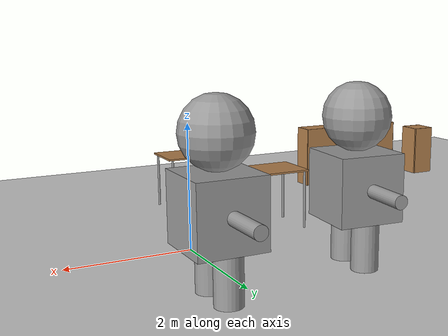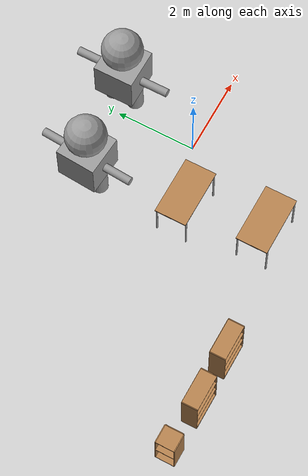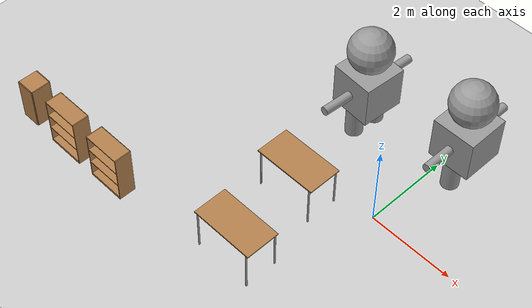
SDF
<sdf version="1.6">
 <world name="default">
  <model name="ground_plane">
   <static>1</static>
   <link name="link">
    <collision name="collision">
     <geometry><plane><normal>0 0 1</normal><size>100 100</size></plane></geometry>
     <surface>
      <contact><collide_bitmask>65535</collide_bitmask></contact>
      <friction><ode><mu>100</mu><mu2>50</mu2></ode></friction>
     </surface>
    </collision>
    <visual name="visual">
     <cast_shadows>0</cast_shadows>
     <geometry><plane><normal>0 0 1</normal><size>100 100</size></plane></geometry>
     <material>
      <script><uri>file://media/materials/scripts/gazebo.material</uri><name>Gazebo/Grey</name></script>
     </material>
    </visual>
   </link>
  </model>
  <model name="table">
   <static>1</static>
   <link name="link">
    <collision name="surface">
     <pose>0 0 1 0 -0 0</pose>
     <geometry><box><size>1.5 0.8 0.03</size></box></geometry>
     <surface><friction><ode><mu>0.6</mu><mu2>0.6</mu2></ode></friction></surface>
    </collision>
    <visual name="visual1">
     <pose>0 0 1 0 -0 0</pose>
     <geometry><box><size>1.5 0.8 0.03</size></box></geometry>
     <material>
      <script><uri>file://media/materials/scripts/gazebo.material</uri><name>Gazebo/Wood</name></script>
     </material>
    </visual>
    <collision name="front_left_leg">
     <pose>0.68 0.38 0.5 0 -0 0</pose>
     <geometry><cylinder><radius>0.02</radius><length>1</length></cylinder></geometry>
    </collision>
    <visual name="front_left_leg">
     <pose>0.68 0.38 0.5 0 -0 0</pose>
     <geometry><cylinder><radius>0.02</radius><length>1</length></cylinder></geometry>
     <material>
      <script><uri>file://media/materials/scripts/gazebo.material</uri><name>Gazebo/Grey</name></script>
     </material>
    </visual>
    <collision name="front_right_leg">
     <pose>0.68 -0.38 0.5 0 -0 0</pose>
     <geometry><cylinder><radius>0.02</radius><length>1</length></cylinder></geometry>
    </collision>
    <visual name="front_right_leg">
     <pose>0.68 -0.38 0.5 0 -0 0</pose>
     <geometry><cylinder><radius>0.02</radius><length>1</length></cylinder></geometry>
     <material>
      <script><uri>file://media/materials/scripts/gazebo.material</uri><name>Gazebo/Grey</name></script>
     </material>
    </visual>
    <collision name="back_right_leg">
     <pose>-0.68 -0.38 0.5 0 -0 0</pose>
     <geometry><cylinder><radius>0.02</radius><length>1</length></cylinder></geometry>
    </collision>
    <visual name="back_right_leg">
     <pose>-0.68 -0.38 0.5 0 -0 0</pose>
     <geometry><cylinder><radius>0.02</radius><length>1</length></cylinder></geometry>
     <material>
      <script><uri>file://media/materials/scripts/gazebo.material</uri><name>Gazebo/Grey</name></script>
     </material>
    </visual>
    <collision name="back_left_leg">
     <pose>-0.68 0.38 0.5 0 -0 0</pose>
     <geometry><cylinder><radius>0.02</radius><length>1</length></cylinder></geometry>
    </collision>
    <visual name="back_left_leg">
     <pose>-0.68 0.38 0.5 0 -0 0</pose>
     <geometry><cylinder><radius>0.02</radius><length>1</length></cylinder></geometry>
     <material>
      <script><uri>file://media/materials/scripts/gazebo.material</uri><name>Gazebo/Grey</name></script>
     </material>
    </visual>
   </link>
   <pose>-1.26954 -2.58897 0 0 -0 0</pose>
  </model>
  <model name="bookshelf">
   <static>1</static>
   <link name="link">
    <inertial><mass>1</mass></inertial>
    <collision name="back">
     <pose>0 0.005 0.6 0 -0 0</pose>
     <geometry><box><size>0.9 0.01 1.2</size></box></geometry>
    </collision>
    <visual name="visual1">
     <pose>0 0.005 0.6 0 -0 0</pose>
     <geometry><box><size>0.9 0.01 1.2</size></box></geometry>
     <material>
      <script><uri>file://media/materials/scripts/gazebo.material</uri><name>Gazebo/Wood</name></script>
     </material>
    </visual>
    <collision name="left_side">
     <pose>0.45 -0.195 0.6 0 -0 0</pose>
     <geometry><box><size>0.02 0.4 1.2</size></box></geometry>
    </collision>
    <visual name="visual2">
     <pose>0.45 -0.195 0.6 0 -0 0</pose>
     <geometry><box><size>0.02 0.4 1.2</size></box></geometry>
     <material>
      <script><uri>file://media/materials/scripts/gazebo.material</uri><name>Gazebo/Wood</name></script>
     </material>
    </visual>
    <collision name="right_side">
     <pose>-0.45 -0.195 0.6 0 -0 0</pose>
     <geometry><box><size>0.02 0.4 1.2</size></box></geometry>
    </collision>
    <visual name="visual3">
     <pose>-0.45 -0.195 0.6 0 -0 0</pose>
     <geometry><box><size>0.02 0.4 1.2</size></box></geometry>
     <material>
      <script><uri>file://media/materials/scripts/gazebo.material</uri><name>Gazebo/Wood</name></script>
     </material>
    </visual>
    <collision name="bottom">
     <pose>0 -0.195 0.03 0 -0 0</pose>
     <geometry><box><size>0.88 0.4 0.06</size></box></geometry>
    </collision>
    <visual name="visual4">
     <pose>0 -0.195 0.03 0 -0 0</pose>
     <geometry><box><size>0.88 0.4 0.06</size></box></geometry>
     <material>
      <script><uri>file://media/materials/scripts/gazebo.material</uri><name>Gazebo/Wood</name></script>
     </material>
    </visual>
    <collision name="top">
     <pose>0 -0.195 1.19 0 -0 0</pose>
     <geometry><box><size>0.88 0.4 0.02</size></box></geometry>
    </collision>
    <visual name="visual5">
     <pose>0 -0.195 1.19 0 -0 0</pose>
     <geometry><box><size>0.88 0.4 0.02</size></box></geometry>
     <material>
      <script><uri>file://media/materials/scripts/gazebo.material</uri><name>Gazebo/Wood</name></script>
     </material>
    </visual>
    <collision name="low_shelf">
     <pose>0 -0.195 0.43 0 -0 0</pose>
     <geometry><box><size>0.88 0.4 0.02</size></box></geometry>
    </collision>
    <visual name="visual6">
     <pose>0 -0.195 0.43 0 -0 0</pose>
     <geometry><box><size>0.88 0.4 0.02</size></box></geometry>
     <material>
      <script><uri>file://media/materials/scripts/gazebo.material</uri><name>Gazebo/Wood</name></script>
     </material>
    </visual>
    <collision name="high_shelf">
     <pose>0 -0.195 0.8 0 -0 0</pose>
     <geometry><box><size>0.88 0.4 0.02</size></box></geometry>
    </collision>
    <visual name="visual7">
     <pose>0 -0.195 0.8 0 -0 0</pose>
     <geometry><box><size>0.88 0.4 0.02</size></box></geometry>
     <material>
      <script><uri>file://media/materials/scripts/gazebo.material</uri><name>Gazebo/Wood</name></script>
     </material>
    </visual>
   </link>
   <pose>-4.36832 -3.00045 0 0 -0 0</pose>
  </model>
  <model name="bookshelf_0">
   <static>1</static>
   <link name="link">
    <inertial><mass>1</mass></inertial>
    <collision name="back">
     <pose>0 0.005 0.6 0 -0 0</pose>
     <geometry><box><size>0.9 0.01 1.2</size></box></geometry>
    </collision>
    <visual name="visual1">
     <pose>0 0.005 0.6 0 -0 0</pose>
     <geometry><box><size>0.9 0.01 1.2</size></box></geometry>
     <material>
      <script><uri>file://media/materials/scripts/gazebo.material</uri><name>Gazebo/Wood</name></script>
     </material>
    </visual>
    <collision name="left_side">
     <pose>0.45 -0.195 0.6 0 -0 0</pose>
     <geometry><box><size>0.02 0.4 1.2</size></box></geometry>
    </collision>
    <visual name="visual2">
     <pose>0.45 -0.195 0.6 0 -0 0</pose>
     <geometry><box><size>0.02 0.4 1.2</size></box></geometry>
     <material>
      <script><uri>file://media/materials/scripts/gazebo.material</uri><name>Gazebo/Wood</name></script>
     </material>
    </visual>
    <collision name="right_side">
     <pose>-0.45 -0.195 0.6 0 -0 0</pose>
     <geometry><box><size>0.02 0.4 1.2</size></box></geometry>
    </collision>
    <visual name="visual3">
     <pose>-0.45 -0.195 0.6 0 -0 0</pose>
     <geometry><box><size>0.02 0.4 1.2</size></box></geometry>
     <material>
      <script><uri>file://media/materials/scripts/gazebo.material</uri><name>Gazebo/Wood</name></script>
     </material>
    </visual>
    <collision name="bottom">
     <pose>0 -0.195 0.03 0 -0 0</pose>
     <geometry><box><size>0.88 0.4 0.06</size></box></geometry>
    </collision>
    <visual name="visual4">
     <pose>0 -0.195 0.03 0 -0 0</pose>
     <geometry><box><size>0.88 0.4 0.06</size></box></geometry>
     <material>
      <script><uri>file://media/materials/scripts/gazebo.material</uri><name>Gazebo/Wood</name></script>
     </material>
    </visual>
    <collision name="top">
     <pose>0 -0.195 1.19 0 -0 0</pose>
     <geometry><box><size>0.88 0.4 0.02</size></box></geometry>
    </collision>
    <visual name="visual5">
     <pose>0 -0.195 1.19 0 -0 0</pose>
     <geometry><box><size>0.88 0.4 0.02</size></box></geometry>
     <material>
      <script><uri>file://media/materials/scripts/gazebo.material</uri><name>Gazebo/Wood</name></script>
     </material>
    </visual>
    <collision name="low_shelf">
     <pose>0 -0.195 0.43 0 -0 0</pose>
     <geometry><box><size>0.88 0.4 0.02</size></box></geometry>
    </collision>
    <visual name="visual6">
     <pose>0 -0.195 0.43 0 -0 0</pose>
     <geometry><box><size>0.88 0.4 0.02</size></box></geometry>
     <material>
      <script><uri>file://media/materials/scripts/gazebo.material</uri><name>Gazebo/Wood</name></script>
     </material>
    </visual>
    <collision name="high_shelf">
     <pose>0 -0.195 0.8 0 -0 0</pose>
     <geometry><box><size>0.88 0.4 0.02</size></box></geometry>
    </collision>
    <visual name="visual7">
     <pose>0 -0.195 0.8 0 -0 0</pose>
     <geometry><box><size>0.88 0.4 0.02</size></box></geometry>
     <material>
      <script><uri>file://media/materials/scripts/gazebo.material</uri><name>Gazebo/Wood</name></script>
     </material>
    </visual>
   </link>
   <pose>-5.69401 -3.01791 0 0 -0 0</pose>
  </model>
  <model name="cabinet">
   <static>1</static>
   <link name="cabinet_bottom_plate">
    <inertial>
     <pose>0 0 -1 0 -0 0</pose>
     <inertia><ixx>2.05</ixx><ixy>0</ixy><ixz>0</ixz><iyy>2.05</iyy><iyz>0</iyz><izz>2.05</izz></inertia>
     <mass>25</mass>
    </inertial>
    <collision name="cabinet_bottom_plate_geom">
     <pose>0 0 0.01 0 -0 0</pose>
     <geometry><box><size>0.45 0.45 0.02</size></box></geometry>
    </collision>
    <visual name="cabinet_bottom_plate_geom_visual">
     <pose>0 0 0.01 0 -0 0</pose>
     <geometry><box><size>0.45 0.45 0.02</size></box></geometry>
     <material>
      <script><uri>file://media/materials/scripts/gazebo.material</uri><name>Gazebo/Wood</name></script>
     </material>
    </visual>
    <collision name="cabinet_bottom_plate_geom_cabinet_back_plate">
     <pose>0.235 0 0.51 0 -0 0</pose>
     <geometry><box><size>0.02 0.45 1.02</size></box></geometry>
    </collision>
    <visual name="cabinet_bottom_plate_geom_cabinet_back_plate_visual">
     <pose>0.235 0 0.51 0 -0 0</pose>
     <geometry><box><size>0.02 0.45 1.02</size></box></geometry>
     <material>
      <script><uri>file://media/materials/scripts/gazebo.material</uri><name>Gazebo/Wood</name></script>
     </material>
    </visual>
    <collision name="cabinet_bottom_plate_geom_cabinet_left_plate">
     <pose>0 0.235 0.51 0 -0 0</pose>
     <geometry><box><size>0.45 0.02 1.02</size></box></geometry>
    </collision>
    <visual name="cabinet_bottom_plate_geom_cabinet_left_plate_visual">
     <pose>0 0.235 0.51 0 -0 0</pose>
     <geometry><box><size>0.45 0.02 1.02</size></box></geometry>
     <material>
      <script><uri>file://media/materials/scripts/gazebo.material</uri><name>Gazebo/Wood</name></script>
     </material>
    </visual>
    <collision name="cabinet_bottom_plate_geom_cabinet_middle_plate">
     <pose>0 0 0.51 0 -0 0</pose>
     <geometry><box><size>0.45 0.45 0.02</size></box></geometry>
    </collision>
    <visual name="cabinet_bottom_plate_geom_cabinet_middle_plate_visual">
     <pose>0 0 0.51 0 -0 0</pose>
     <geometry><box><size>0.45 0.45 0.02</size></box></geometry>
     <material>
      <script><uri>file://media/materials/scripts/gazebo.material</uri><name>Gazebo/Wood</name></script>
     </material>
    </visual>
    <collision name="cabinet_bottom_plate_geom_cabinet_right_plate">
     <pose>0 -0.235 0.51 0 -0 0</pose>
     <geometry><box><size>0.45 0.02 1.02</size></box></geometry>
    </collision>
    <visual name="cabinet_bottom_plate_geom_cabinet_right_plate_visual">
     <pose>0 -0.235 0.51 0 -0 0</pose>
     <geometry><box><size>0.45 0.02 1.02</size></box></geometry>
     <material>
      <script><uri>file://media/materials/scripts/gazebo.material</uri><name>Gazebo/Wood</name></script>
     </material>
    </visual>
    <collision name="cabinet_bottom_plate_geom_cabinet_top_plate">
     <pose>0 0 1.01 0 -0 0</pose>
     <geometry><box><size>0.45 0.45 0.02</size></box></geometry>
    </collision>
    <visual name="cabinet_bottom_plate_geom_cabinet_top_plate_visual">
     <pose>0 0 1.01 0 -0 0</pose>
     <geometry><box><size>0.45 0.45 0.02</size></box></geometry>
     <material>
      <script><uri>file://media/materials/scripts/gazebo.material</uri><name>Gazebo/Wood</name></script>
     </material>
    </visual>
   </link>
   <pose>-6.93991 -3.14956 0 0 -0 0</pose>
  </model>
  <model name="table_1">
   <static>1</static>
   <link name="link">
    <collision name="surface">
     <pose>0 0 1 0 -0 0</pose>
     <geometry><box><size>1.5 0.8 0.03</size></box></geometry>
     <surface><friction><ode><mu>0.6</mu><mu2>0.6</mu2></ode></friction></surface>
    </collision>
    <visual name="visual1">
     <pose>0 0 1 0 -0 0</pose>
     <geometry><box><size>1.5 0.8 0.03</size></box></geometry>
     <material>
      <script><uri>file://media/materials/scripts/gazebo.material</uri><name>Gazebo/Wood</name></script>
     </material>
    </visual>
    <collision name="front_left_leg">
     <pose>0.68 0.38 0.5 0 -0 0</pose>
     <geometry><cylinder><radius>0.02</radius><length>1</length></cylinder></geometry>
    </collision>
    <visual name="front_left_leg">
     <pose>0.68 0.38 0.5 0 -0 0</pose>
     <geometry><cylinder><radius>0.02</radius><length>1</length></cylinder></geometry>
     <material>
      <script><uri>file://media/materials/scripts/gazebo.material</uri><name>Gazebo/Grey</name></script>
     </material>
    </visual>
    <collision name="front_right_leg">
     <pose>0.68 -0.38 0.5 0 -0 0</pose>
     <geometry><cylinder><radius>0.02</radius><length>1</length></cylinder></geometry>
    </collision>
    <visual name="front_right_leg">
     <pose>0.68 -0.38 0.5 0 -0 0</pose>
     <geometry><cylinder><radius>0.02</radius><length>1</length></cylinder></geometry>
     <material>
      <script><uri>file://media/materials/scripts/gazebo.material</uri><name>Gazebo/Grey</name></script>
     </material>
    </visual>
    <collision name="back_right_leg">
     <pose>-0.68 -0.38 0.5 0 -0 0</pose>
     <geometry><cylinder><radius>0.02</radius><length>1</length></cylinder></geometry>
    </collision>
    <visual name="back_right_leg">
     <pose>-0.68 -0.38 0.5 0 -0 0</pose>
     <geometry><cylinder><radius>0.02</radius><length>1</length></cylinder></geometry>
     <material>
      <script><uri>file://media/materials/scripts/gazebo.material</uri><name>Gazebo/Grey</name></script>
     </material>
    </visual>
    <collision name="back_left_leg">
     <pose>-0.68 0.38 0.5 0 -0 0</pose>
     <geometry><cylinder><radius>0.02</radius><length>1</length></cylinder></geometry>
    </collision>
    <visual name="back_left_leg">
     <pose>-0.68 0.38 0.5 0 -0 0</pose>
     <geometry><cylinder><radius>0.02</radius><length>1</length></cylinder></geometry>
     <material>
      <script><uri>file://media/materials/scripts/gazebo.material</uri><name>Gazebo/Grey</name></script>
     </material>
    </visual>
   </link>
   <pose>-1.53853 -0.636674 0 0 -0 0</pose>
  </model>
  <model name="HumanoidRobot">
   <link name="link_0">
    <pose>0.003337 -0.300002 -0.733333 0 -0 0</pose>
    <inertial>
     <mass>1</mass>
     <inertia><ixx>0.145833</ixx><ixy>0</ixy><ixz>0</ixz><iyy>0.145833</iyy><iyz>0</iyz><izz>0.125</izz></inertia>
    </inertial>
    <visual name="visual">
     <geometry><cylinder><radius>0.2</radius><length>0.7</length></cylinder></geometry>
     <material>
      <lighting>1</lighting>
      <script><uri>file://media/materials/scripts/gazebo.material</uri><name>Gazebo/Grey</name></script>
      <shader type="pixel"><normal_map>__default__</normal_map></shader>
      <ambient>0.3 0.3 0.3 1</ambient>
      <diffuse>0.7 0.7 0.7 1</diffuse>
      <specular>0.01 0.01 0.01 1</specular>
      <emissive>0 0 0 1</emissive>
     </material>
    </visual>
    <collision name="collision">
     <geometry><cylinder><radius>0.2</radius><length>0.7</length></cylinder></geometry>
     <surface>
      <friction>
       <ode><mu>1</mu><mu2>1</mu2><fdir1>0 0 0</fdir1><slip1>0</slip1><slip2>0</slip2></ode>
       <torsional>
        <coefficient>1</coefficient>
        <patch_radius>0</patch_radius>
        <surface_radius>0</surface_radius>
        <use_patch_radius>1</use_patch_radius>
        <ode><slip>0</slip></ode>
       </torsional>
      </friction>
      <bounce><restitution_coefficient>0</restitution_coefficient><threshold>1e+06</threshold></bounce>
      <contact>
       <collide_without_contact>0</collide_without_contact>
       <collide_without_contact_bitmask>1</collide_without_contact_bitmask>
       <collide_bitmask>1</collide_bitmask>
       <ode>
        <soft_cfm>0</soft_cfm>
        <soft_erp>0.2</soft_erp>
        <kp>1e+13</kp>
        <kd>1</kd>
        <max_vel>0.01</max_vel>
        <min_depth>0</min_depth>
       </ode>
       <bullet>
        <split_impulse>1</split_impulse>
        <split_impulse_penetration_threshold>-0.01</split_impulse_penetration_threshold>
        <soft_cfm>0</soft_cfm>
        <soft_erp>0.2</soft_erp>
        <kp>1e+13</kp>
        <kd>1</kd>
       </bullet>
      </contact>
     </surface>
    </collision>
   </link>
   <link name="link_0_clone">
    <pose>0.003337 0.299998 -0.733333 0 -0 0</pose>
    <inertial>
     <mass>1</mass>
     <inertia><ixx>0.145833</ixx><ixy>0</ixy><ixz>0</ixz><iyy>0.145833</iyy><iyz>0</iyz><izz>0.125</izz></inertia>
    </inertial>
    <visual name="visual">
     <geometry><cylinder><radius>0.2</radius><length>0.7</length></cylinder></geometry>
     <material>
      <lighting>1</lighting>
      <script><uri>file://media/materials/scripts/gazebo.material</uri><name>Gazebo/Grey</name></script>
      <shader type="pixel"><normal_map>__default__</normal_map></shader>
      <ambient>0.3 0.3 0.3 1</ambient>
      <diffuse>0.7 0.7 0.7 1</diffuse>
      <specular>0.01 0.01 0.01 1</specular>
      <emissive>0 0 0 1</emissive>
     </material>
    </visual>
    <collision name="collision">
     <geometry><cylinder><radius>0.2</radius><length>0.7</length></cylinder></geometry>
     <surface>
      <friction>
       <ode><mu>1</mu><mu2>1</mu2><fdir1>0 0 0</fdir1><slip1>0</slip1><slip2>0</slip2></ode>
       <torsional>
        <coefficient>1</coefficient>
        <patch_radius>0</patch_radius>
        <surface_radius>0</surface_radius>
        <use_patch_radius>1</use_patch_radius>
        <ode><slip>0</slip></ode>
       </torsional>
      </friction>
      <bounce><restitution_coefficient>0</restitution_coefficient><threshold>1e+06</threshold></bounce>
      <contact>
       <collide_without_contact>0</collide_without_contact>
       <collide_without_contact_bitmask>1</collide_without_contact_bitmask>
       <collide_bitmask>1</collide_bitmask>
       <ode>
        <soft_cfm>0</soft_cfm>
        <soft_erp>0.2</soft_erp>
        <kp>1e+13</kp>
        <kd>1</kd>
        <max_vel>0.01</max_vel>
        <min_depth>0</min_depth>
       </ode>
       <bullet>
        <split_impulse>1</split_impulse>
        <split_impulse_penetration_threshold>-0.01</split_impulse_penetration_threshold>
        <soft_cfm>0</soft_cfm>
        <soft_erp>0.2</soft_erp>
        <kp>1e+13</kp>
        <kd>1</kd>
       </bullet>
      </contact>
     </surface>
    </collision>
   </link>
   <link name="link_1">
    <pose>0.003337 -2e-06 0.116667 0 -0 0</pose>
    <inertial>
     <mass>1</mass>
     <inertia>
      <ixx>0.166667</ixx>
      <ixy>0</ixy>
      <ixz>0</ixz>
      <iyy>0.166667</iyy>
      <iyz>0</iyz>
      <izz>0.166667</izz>
     </inertia>
    </inertial>
    <visual name="visual">
     <geometry><box><size>1 1 1</size></box></geometry>
     <material>
      <lighting>1</lighting>
      <script><uri>file://media/materials/scripts/gazebo.material</uri><name>Gazebo/Grey</name></script>
      <shader type="pixel"/>
      <ambient>0.3 0.3 0.3 1</ambient>
      <diffuse>0.7 0.7 0.7 1</diffuse>
      <specular>0.01 0.01 0.01 1</specular>
      <emissive>0 0 0 1</emissive>
     </material>
    </visual>
    <collision name="collision">
     <geometry><box><size>1 1 1</size></box></geometry>
     <surface>
      <friction>
       <ode><mu>1</mu><mu2>1</mu2><fdir1>0 0 0</fdir1><slip1>0</slip1><slip2>0</slip2></ode>
       <torsional>
        <coefficient>1</coefficient>
        <patch_radius>0</patch_radius>
        <surface_radius>0</surface_radius>
        <use_patch_radius>1</use_patch_radius>
        <ode><slip>0</slip></ode>
       </torsional>
      </friction>
      <bounce><restitution_coefficient>0</restitution_coefficient><threshold>1e+06</threshold></bounce>
      <contact>
       <collide_without_contact>0</collide_without_contact>
       <collide_without_contact_bitmask>1</collide_without_contact_bitmask>
       <collide_bitmask>1</collide_bitmask>
       <ode>
        <soft_cfm>0</soft_cfm>
        <soft_erp>0.2</soft_erp>
        <kp>1e+13</kp>
        <kd>1</kd>
        <max_vel>0.01</max_vel>
        <min_depth>0</min_depth>
       </ode>
       <bullet>
        <split_impulse>1</split_impulse>
        <split_impulse_penetration_threshold>-0.01</split_impulse_penetration_threshold>
        <soft_cfm>0</soft_cfm>
        <soft_erp>0.2</soft_erp>
        <kp>1e+13</kp>
        <kd>1</kd>
       </bullet>
      </contact>
     </surface>
    </collision>
   </link>
   <link name="link_3">
    <pose>0.003337 -2e-06 1.11667 0 -0 0</pose>
    <inertial>
     <mass>1</mass>
     <inertia><ixx>0.1</ixx><ixy>0</ixy><ixz>0</ixz><iyy>0.1</iyy><iyz>0</iyz><izz>0.1</izz></inertia>
    </inertial>
    <visual name="visual">
     <geometry><sphere><radius>0.5</radius></sphere></geometry>
     <material>
      <lighting>1</lighting>
      <script><uri>file://media/materials/scripts/gazebo.material</uri><name>Gazebo/Grey</name></script>
      <shader type="pixel"/>
      <ambient>0.3 0.3 0.3 1</ambient>
      <diffuse>0.7 0.7 0.7 1</diffuse>
      <specular>0.01 0.01 0.01 1</specular>
      <emissive>0 0 0 1</emissive>
     </material>
    </visual>
    <collision name="collision">
     <geometry><sphere><radius>0.5</radius></sphere></geometry>
     <surface>
      <friction>
       <ode><mu>1</mu><mu2>1</mu2><fdir1>0 0 0</fdir1><slip1>0</slip1><slip2>0</slip2></ode>
       <torsional>
        <coefficient>1</coefficient>
        <patch_radius>0</patch_radius>
        <surface_radius>0</surface_radius>
        <use_patch_radius>1</use_patch_radius>
        <ode><slip>0</slip></ode>
       </torsional>
      </friction>
      <bounce><restitution_coefficient>0</restitution_coefficient><threshold>1e+06</threshold></bounce>
      <contact>
       <collide_without_contact>0</collide_without_contact>
       <collide_without_contact_bitmask>1</collide_without_contact_bitmask>
       <collide_bitmask>1</collide_bitmask>
       <ode>
        <soft_cfm>0</soft_cfm>
        <soft_erp>0.2</soft_erp>
        <kp>1e+13</kp>
        <kd>1</kd>
        <max_vel>0.01</max_vel>
        <min_depth>0</min_depth>
       </ode>
       <bullet>
        <split_impulse>1</split_impulse>
        <split_impulse_penetration_threshold>-0.01</split_impulse_penetration_threshold>
        <soft_cfm>0</soft_cfm>
        <soft_erp>0.2</soft_erp>
        <kp>1e+13</kp>
        <kd>1</kd>
       </bullet>
      </contact>
     </surface>
    </collision>
   </link>
   <link name="link_4">
    <pose>-0.016663 -0.850011 0.116667 0 -0 0</pose>
    <inertial>
     <mass>1</mass>
     <inertia><ixx>0.145833</ixx><ixy>0</ixy><ixz>0</ixz><iyy>0.145833</iyy><iyz>0</iyz><izz>0.125</izz></inertia>
    </inertial>
    <visual name="visual">
     <pose>0 0 0 1.5707 -0 0</pose>
     <geometry><cylinder><radius>0.1</radius><length>0.7</length></cylinder></geometry>
     <material>
      <lighting>1</lighting>
      <script><uri>file://media/materials/scripts/gazebo.material</uri><name>Gazebo/Grey</name></script>
      <shader type="pixel"><normal_map>__default__</normal_map></shader>
      <ambient>0.3 0.3 0.3 1</ambient>
      <diffuse>0.7 0.7 0.7 1</diffuse>
      <specular>0.01 0.01 0.01 1</specular>
      <emissive>0 0 0 1</emissive>
     </material>
    </visual>
    <collision name="collision">
     <pose>0 0 0 1.5707 -0 0</pose>
     <geometry><cylinder><radius>0.1</radius><length>0.7</length></cylinder></geometry>
     <surface>
      <friction>
       <ode><mu>1</mu><mu2>1</mu2><fdir1>0 0 0</fdir1><slip1>0</slip1><slip2>0</slip2></ode>
       <torsional>
        <coefficient>1</coefficient>
        <patch_radius>0</patch_radius>
        <surface_radius>0</surface_radius>
        <use_patch_radius>1</use_patch_radius>
        <ode><slip>0</slip></ode>
       </torsional>
      </friction>
      <bounce><restitution_coefficient>0</restitution_coefficient><threshold>1e+06</threshold></bounce>
      <contact>
       <collide_without_contact>0</collide_without_contact>
       <collide_without_contact_bitmask>1</collide_without_contact_bitmask>
       <collide_bitmask>1</collide_bitmask>
       <ode>
        <soft_cfm>0</soft_cfm>
        <soft_erp>0.2</soft_erp>
        <kp>1e+13</kp>
        <kd>1</kd>
        <max_vel>0.01</max_vel>
        <min_depth>0</min_depth>
       </ode>
       <bullet>
        <split_impulse>1</split_impulse>
        <split_impulse_penetration_threshold>-0.01</split_impulse_penetration_threshold>
        <soft_cfm>0</soft_cfm>
        <soft_erp>0.2</soft_erp>
        <kp>1e+13</kp>
        <kd>1</kd>
       </bullet>
      </contact>
     </surface>
    </collision>
   </link>
   <link name="link_4_clone">
    <pose>0.003337 0.850008 0.116667 0 -0 0</pose>
    <inertial>
     <mass>1</mass>
     <inertia><ixx>0.145833</ixx><ixy>0</ixy><ixz>0</ixz><iyy>0.145833</iyy><iyz>0</iyz><izz>0.125</izz></inertia>
    </inertial>
    <visual name="visual">
     <pose>0 0 0 1.5707 -0 0</pose>
     <geometry><cylinder><radius>0.1</radius><length>0.7</length></cylinder></geometry>
     <material>
      <lighting>1</lighting>
      <script><uri>file://media/materials/scripts/gazebo.material</uri><name>Gazebo/Grey</name></script>
      <shader type="pixel"><normal_map>__default__</normal_map></shader>
      <ambient>0.3 0.3 0.3 1</ambient>
      <diffuse>0.7 0.7 0.7 1</diffuse>
      <specular>0.01 0.01 0.01 1</specular>
      <emissive>0 0 0 1</emissive>
     </material>
    </visual>
    <collision name="collision">
     <pose>0 0 0 1.5707 -0 0</pose>
     <geometry><cylinder><radius>0.1</radius><length>0.7</length></cylinder></geometry>
     <surface>
      <friction>
       <ode><mu>1</mu><mu2>1</mu2><fdir1>0 0 0</fdir1><slip1>0</slip1><slip2>0</slip2></ode>
       <torsional>
        <coefficient>1</coefficient>
        <patch_radius>0</patch_radius>
        <surface_radius>0</surface_radius>
        <use_patch_radius>1</use_patch_radius>
        <ode><slip>0</slip></ode>
       </torsional>
      </friction>
      <bounce><restitution_coefficient>0</restitution_coefficient><threshold>1e+06</threshold></bounce>
      <contact>
       <collide_without_contact>0</collide_without_contact>
       <collide_without_contact_bitmask>1</collide_without_contact_bitmask>
       <collide_bitmask>1</collide_bitmask>
       <ode>
        <soft_cfm>0</soft_cfm>
        <soft_erp>0.2</soft_erp>
        <kp>1e+13</kp>
        <kd>1</kd>
        <max_vel>0.01</max_vel>
        <min_depth>0</min_depth>
       </ode>
       <bullet>
        <split_impulse>1</split_impulse>
        <split_impulse_penetration_threshold>-0.01</split_impulse_penetration_threshold>
        <soft_cfm>0</soft_cfm>
        <soft_erp>0.2</soft_erp>
        <kp>1e+13</kp>
        <kd>1</kd>
       </bullet>
      </contact>
     </surface>
    </collision>
   </link>
   <joint name="link_1_JOINT_0" type="revolute">
    <parent>link_1</parent>
    <child>link_3</child>
    <axis>
     <xyz>1 0 0</xyz>
     <use_parent_model_frame>0</use_parent_model_frame>
     <limit>
      <lower>-1.79769e+308</lower>
      <upper>1.79769e+308</upper>
      <effort>-1</effort>
      <velocity>-1</velocity>
     </limit>
     <dynamics>
      <spring_reference>0</spring_reference>
      <spring_stiffness>0</spring_stiffness>
      <damping>0</damping>
      <friction>0</friction>
     </dynamics>
    </axis>
    <physics>
     <ode><limit><cfm>0</cfm><erp>0.2</erp></limit><suspension><cfm>0</cfm><erp>0.2</erp></suspension></ode>
    </physics>
   </joint>
   <joint name="link_1_JOINT_1" type="revolute">
    <parent>link_1</parent>
    <child>link_0</child>
    <axis>
     <xyz>1 0 0</xyz>
     <use_parent_model_frame>0</use_parent_model_frame>
     <limit>
      <lower>-1.79769e+308</lower>
      <upper>1.79769e+308</upper>
      <effort>-1</effort>
      <velocity>-1</velocity>
     </limit>
     <dynamics>
      <spring_reference>0</spring_reference>
      <spring_stiffness>0</spring_stiffness>
      <damping>0</damping>
      <friction>0</friction>
     </dynamics>
    </axis>
    <physics>
     <ode><limit><cfm>0</cfm><erp>0.2</erp></limit><suspension><cfm>0</cfm><erp>0.2</erp></suspension></ode>
    </physics>
   </joint>
   <joint name="link_1_JOINT_2" type="revolute">
    <parent>link_1</parent>
    <child>link_0_clone</child>
    <axis>
     <xyz>1 0 0</xyz>
     <use_parent_model_frame>0</use_parent_model_frame>
     <limit>
      <lower>-1.79769e+308</lower>
      <upper>1.79769e+308</upper>
      <effort>-1</effort>
      <velocity>-1</velocity>
     </limit>
     <dynamics>
      <spring_reference>0</spring_reference>
      <spring_stiffness>0</spring_stiffness>
      <damping>0</damping>
      <friction>0</friction>
     </dynamics>
    </axis>
    <physics>
     <ode><limit><cfm>0</cfm><erp>0.2</erp></limit><suspension><cfm>0</cfm><erp>0.2</erp></suspension></ode>
    </physics>
   </joint>
   <joint name="link_1_JOINT_3" type="revolute">
    <parent>link_1</parent>
    <child>link_4</child>
    <axis>
     <xyz>1 0 0</xyz>
     <use_parent_model_frame>0</use_parent_model_frame>
     <limit>
      <lower>-1.79769e+308</lower>
      <upper>1.79769e+308</upper>
      <effort>-1</effort>
      <velocity>-1</velocity>
     </limit>
     <dynamics>
      <spring_reference>0</spring_reference>
      <spring_stiffness>0</spring_stiffness>
      <damping>0</damping>
      <friction>0</friction>
     </dynamics>
    </axis>
    <physics>
     <ode><limit><cfm>0</cfm><erp>0.2</erp></limit><suspension><cfm>0</cfm><erp>0.2</erp></suspension></ode>
    </physics>
   </joint>
   <joint name="link_1_JOINT_4" type="revolute">
    <parent>link_1</parent>
    <child>link_4_clone</child>
    <axis>
     <xyz>1 0 0</xyz>
     <use_parent_model_frame>0</use_parent_model_frame>
     <limit>
      <lower>-1.79769e+308</lower>
      <upper>1.79769e+308</upper>
      <effort>-1</effort>
      <velocity>-1</velocity>
     </limit>
     <dynamics>
      <spring_reference>0</spring_reference>
      <spring_stiffness>0</spring_stiffness>
      <damping>0</damping>
      <friction>0</friction>
     </dynamics>
    </axis>
    <physics>
     <ode><limit><cfm>0</cfm><erp>0.2</erp></limit><suspension><cfm>0</cfm><erp>0.2</erp></suspension></ode>
    </physics>
   </joint>
   <static>0</static>
   <pose>-1.88825 1.75526 1.08333 4e-06 -0 -0.068804</pose>
  </model>
  <model name="HumanoidRobot_0">
   <link name="link_0">
    <pose>0.003337 -0.300002 -0.733333 0 -0 0</pose>
    <inertial>
     <mass>1</mass>
     <inertia><ixx>0.145833</ixx><ixy>0</ixy><ixz>0</ixz><iyy>0.145833</iyy><iyz>0</iyz><izz>0.125</izz></inertia>
    </inertial>
    <visual name="visual">
     <geometry><cylinder><radius>0.2</radius><length>0.7</length></cylinder></geometry>
     <material>
      <lighting>1</lighting>
      <script><uri>file://media/materials/scripts/gazebo.material</uri><name>Gazebo/Grey</name></script>
      <shader type="pixel"><normal_map>__default__</normal_map></shader>
      <ambient>0.3 0.3 0.3 1</ambient>
      <diffuse>0.7 0.7 0.7 1</diffuse>
      <specular>0.01 0.01 0.01 1</specular>
      <emissive>0 0 0 1</emissive>
     </material>
    </visual>
    <collision name="collision">
     <geometry><cylinder><radius>0.2</radius><length>0.7</length></cylinder></geometry>
     <surface>
      <friction>
       <ode><mu>1</mu><mu2>1</mu2><fdir1>0 0 0</fdir1><slip1>0</slip1><slip2>0</slip2></ode>
       <torsional>
        <coefficient>1</coefficient>
        <patch_radius>0</patch_radius>
        <surface_radius>0</surface_radius>
        <use_patch_radius>1</use_patch_radius>
        <ode><slip>0</slip></ode>
       </torsional>
      </friction>
      <bounce><restitution_coefficient>0</restitution_coefficient><threshold>1e+06</threshold></bounce>
      <contact>
       <collide_without_contact>0</collide_without_contact>
       <collide_without_contact_bitmask>1</collide_without_contact_bitmask>
       <collide_bitmask>1</collide_bitmask>
       <ode>
        <soft_cfm>0</soft_cfm>
        <soft_erp>0.2</soft_erp>
        <kp>1e+13</kp>
        <kd>1</kd>
        <max_vel>0.01</max_vel>
        <min_depth>0</min_depth>
       </ode>
       <bullet>
        <split_impulse>1</split_impulse>
        <split_impulse_penetration_threshold>-0.01</split_impulse_penetration_threshold>
        <soft_cfm>0</soft_cfm>
        <soft_erp>0.2</soft_erp>
        <kp>1e+13</kp>
        <kd>1</kd>
       </bullet>
      </contact>
     </surface>
    </collision>
   </link>
   <link name="link_0_clone">
    <pose>0.003337 0.299998 -0.733333 0 -0 0</pose>
    <inertial>
     <mass>1</mass>
     <inertia><ixx>0.145833</ixx><ixy>0</ixy><ixz>0</ixz><iyy>0.145833</iyy><iyz>0</iyz><izz>0.125</izz></inertia>
    </inertial>
    <visual name="visual">
     <geometry><cylinder><radius>0.2</radius><length>0.7</length></cylinder></geometry>
     <material>
      <lighting>1</lighting>
      <script><uri>file://media/materials/scripts/gazebo.material</uri><name>Gazebo/Grey</name></script>
      <shader type="pixel"><normal_map>__default__</normal_map></shader>
      <ambient>0.3 0.3 0.3 1</ambient>
      <diffuse>0.7 0.7 0.7 1</diffuse>
      <specular>0.01 0.01 0.01 1</specular>
      <emissive>0 0 0 1</emissive>
     </material>
    </visual>
    <collision name="collision">
     <geometry><cylinder><radius>0.2</radius><length>0.7</length></cylinder></geometry>
     <surface>
      <friction>
       <ode><mu>1</mu><mu2>1</mu2><fdir1>0 0 0</fdir1><slip1>0</slip1><slip2>0</slip2></ode>
       <torsional>
        <coefficient>1</coefficient>
        <patch_radius>0</patch_radius>
        <surface_radius>0</surface_radius>
        <use_patch_radius>1</use_patch_radius>
        <ode><slip>0</slip></ode>
       </torsional>
      </friction>
      <bounce><restitution_coefficient>0</restitution_coefficient><threshold>1e+06</threshold></bounce>
      <contact>
       <collide_without_contact>0</collide_without_contact>
       <collide_without_contact_bitmask>1</collide_without_contact_bitmask>
       <collide_bitmask>1</collide_bitmask>
       <ode>
        <soft_cfm>0</soft_cfm>
        <soft_erp>0.2</soft_erp>
        <kp>1e+13</kp>
        <kd>1</kd>
        <max_vel>0.01</max_vel>
        <min_depth>0</min_depth>
       </ode>
       <bullet>
        <split_impulse>1</split_impulse>
        <split_impulse_penetration_threshold>-0.01</split_impulse_penetration_threshold>
        <soft_cfm>0</soft_cfm>
        <soft_erp>0.2</soft_erp>
        <kp>1e+13</kp>
        <kd>1</kd>
       </bullet>
      </contact>
     </surface>
    </collision>
   </link>
   <link name="link_1">
    <pose>0.003337 -2e-06 0.116667 0 -0 0</pose>
    <inertial>
     <mass>1</mass>
     <inertia>
      <ixx>0.166667</ixx>
      <ixy>0</ixy>
      <ixz>0</ixz>
      <iyy>0.166667</iyy>
      <iyz>0</iyz>
      <izz>0.166667</izz>
     </inertia>
    </inertial>
    <visual name="visual">
     <geometry><box><size>1 1 1</size></box></geometry>
     <material>
      <lighting>1</lighting>
      <script><uri>file://media/materials/scripts/gazebo.material</uri><name>Gazebo/Grey</name></script>
      <shader type="pixel"/>
      <ambient>0.3 0.3 0.3 1</ambient>
      <diffuse>0.7 0.7 0.7 1</diffuse>
      <specular>0.01 0.01 0.01 1</specular>
      <emissive>0 0 0 1</emissive>
     </material>
    </visual>
    <collision name="collision">
     <geometry><box><size>1 1 1</size></box></geometry>
     <surface>
      <friction>
       <ode><mu>1</mu><mu2>1</mu2><fdir1>0 0 0</fdir1><slip1>0</slip1><slip2>0</slip2></ode>
       <torsional>
        <coefficient>1</coefficient>
        <patch_radius>0</patch_radius>
        <surface_radius>0</surface_radius>
        <use_patch_radius>1</use_patch_radius>
        <ode><slip>0</slip></ode>
       </torsional>
      </friction>
      <bounce><restitution_coefficient>0</restitution_coefficient><threshold>1e+06</threshold></bounce>
      <contact>
       <collide_without_contact>0</collide_without_contact>
       <collide_without_contact_bitmask>1</collide_without_contact_bitmask>
       <collide_bitmask>1</collide_bitmask>
       <ode>
        <soft_cfm>0</soft_cfm>
        <soft_erp>0.2</soft_erp>
        <kp>1e+13</kp>
        <kd>1</kd>
        <max_vel>0.01</max_vel>
        <min_depth>0</min_depth>
       </ode>
       <bullet>
        <split_impulse>1</split_impulse>
        <split_impulse_penetration_threshold>-0.01</split_impulse_penetration_threshold>
        <soft_cfm>0</soft_cfm>
        <soft_erp>0.2</soft_erp>
        <kp>1e+13</kp>
        <kd>1</kd>
       </bullet>
      </contact>
     </surface>
    </collision>
   </link>
   <link name="link_3">
    <pose>0.003337 -2e-06 1.11667 0 -0 0</pose>
    <inertial>
     <mass>1</mass>
     <inertia><ixx>0.1</ixx><ixy>0</ixy><ixz>0</ixz><iyy>0.1</iyy><iyz>0</iyz><izz>0.1</izz></inertia>
    </inertial>
    <visual name="visual">
     <geometry><sphere><radius>0.5</radius></sphere></geometry>
     <material>
      <lighting>1</lighting>
      <script><uri>file://media/materials/scripts/gazebo.material</uri><name>Gazebo/Grey</name></script>
      <shader type="pixel"/>
      <ambient>0.3 0.3 0.3 1</ambient>
      <diffuse>0.7 0.7 0.7 1</diffuse>
      <specular>0.01 0.01 0.01 1</specular>
      <emissive>0 0 0 1</emissive>
     </material>
    </visual>
    <collision name="collision">
     <geometry><sphere><radius>0.5</radius></sphere></geometry>
     <surface>
      <friction>
       <ode><mu>1</mu><mu2>1</mu2><fdir1>0 0 0</fdir1><slip1>0</slip1><slip2>0</slip2></ode>
       <torsional>
        <coefficient>1</coefficient>
        <patch_radius>0</patch_radius>
        <surface_radius>0</surface_radius>
        <use_patch_radius>1</use_patch_radius>
        <ode><slip>0</slip></ode>
       </torsional>
      </friction>
      <bounce><restitution_coefficient>0</restitution_coefficient><threshold>1e+06</threshold></bounce>
      <contact>
       <collide_without_contact>0</collide_without_contact>
       <collide_without_contact_bitmask>1</collide_without_contact_bitmask>
       <collide_bitmask>1</collide_bitmask>
       <ode>
        <soft_cfm>0</soft_cfm>
        <soft_erp>0.2</soft_erp>
        <kp>1e+13</kp>
        <kd>1</kd>
        <max_vel>0.01</max_vel>
        <min_depth>0</min_depth>
       </ode>
       <bullet>
        <split_impulse>1</split_impulse>
        <split_impulse_penetration_threshold>-0.01</split_impulse_penetration_threshold>
        <soft_cfm>0</soft_cfm>
        <soft_erp>0.2</soft_erp>
        <kp>1e+13</kp>
        <kd>1</kd>
       </bullet>
      </contact>
     </surface>
    </collision>
   </link>
   <link name="link_4">
    <pose>-0.016663 -0.850011 0.116667 0 -0 0</pose>
    <inertial>
     <mass>1</mass>
     <inertia><ixx>0.145833</ixx><ixy>0</ixy><ixz>0</ixz><iyy>0.145833</iyy><iyz>0</iyz><izz>0.125</izz></inertia>
    </inertial>
    <visual name="visual">
     <pose>0 0 0 1.5707 -0 0</pose>
     <geometry><cylinder><radius>0.1</radius><length>0.7</length></cylinder></geometry>
     <material>
      <lighting>1</lighting>
      <script><uri>file://media/materials/scripts/gazebo.material</uri><name>Gazebo/Grey</name></script>
      <shader type="pixel"><normal_map>__default__</normal_map></shader>
      <ambient>0.3 0.3 0.3 1</ambient>
      <diffuse>0.7 0.7 0.7 1</diffuse>
      <specular>0.01 0.01 0.01 1</specular>
      <emissive>0 0 0 1</emissive>
     </material>
    </visual>
    <collision name="collision">
     <pose>0 0 0 1.5707 -0 0</pose>
     <geometry><cylinder><radius>0.1</radius><length>0.7</length></cylinder></geometry>
     <surface>
      <friction>
       <ode><mu>1</mu><mu2>1</mu2><fdir1>0 0 0</fdir1><slip1>0</slip1><slip2>0</slip2></ode>
       <torsional>
        <coefficient>1</coefficient>
        <patch_radius>0</patch_radius>
        <surface_radius>0</surface_radius>
        <use_patch_radius>1</use_patch_radius>
        <ode><slip>0</slip></ode>
       </torsional>
      </friction>
      <bounce><restitution_coefficient>0</restitution_coefficient><threshold>1e+06</threshold></bounce>
      <contact>
       <collide_without_contact>0</collide_without_contact>
       <collide_without_contact_bitmask>1</collide_without_contact_bitmask>
       <collide_bitmask>1</collide_bitmask>
       <ode>
        <soft_cfm>0</soft_cfm>
        <soft_erp>0.2</soft_erp>
        <kp>1e+13</kp>
        <kd>1</kd>
        <max_vel>0.01</max_vel>
        <min_depth>0</min_depth>
       </ode>
       <bullet>
        <split_impulse>1</split_impulse>
        <split_impulse_penetration_threshold>-0.01</split_impulse_penetration_threshold>
        <soft_cfm>0</soft_cfm>
        <soft_erp>0.2</soft_erp>
        <kp>1e+13</kp>
        <kd>1</kd>
       </bullet>
      </contact>
     </surface>
    </collision>
   </link>
   <link name="link_4_clone">
    <pose>0.003337 0.850008 0.116667 0 -0 0</pose>
    <inertial>
     <mass>1</mass>
     <inertia><ixx>0.145833</ixx><ixy>0</ixy><ixz>0</ixz><iyy>0.145833</iyy><iyz>0</iyz><izz>0.125</izz></inertia>
    </inertial>
    <visual name="visual">
     <pose>0 0 0 1.5707 -0 0</pose>
     <geometry><cylinder><radius>0.1</radius><length>0.7</length></cylinder></geometry>
     <material>
      <lighting>1</lighting>
      <script><uri>file://media/materials/scripts/gazebo.material</uri><name>Gazebo/Grey</name></script>
      <shader type="pixel"><normal_map>__default__</normal_map></shader>
      <ambient>0.3 0.3 0.3 1</ambient>
      <diffuse>0.7 0.7 0.7 1</diffuse>
      <specular>0.01 0.01 0.01 1</specular>
      <emissive>0 0 0 1</emissive>
     </material>
    </visual>
    <collision name="collision">
     <pose>0 0 0 1.5707 -0 0</pose>
     <geometry><cylinder><radius>0.1</radius><length>0.7</length></cylinder></geometry>
     <surface>
      <friction>
       <ode><mu>1</mu><mu2>1</mu2><fdir1>0 0 0</fdir1><slip1>0</slip1><slip2>0</slip2></ode>
       <torsional>
        <coefficient>1</coefficient>
        <patch_radius>0</patch_radius>
        <surface_radius>0</surface_radius>
        <use_patch_radius>1</use_patch_radius>
        <ode><slip>0</slip></ode>
       </torsional>
      </friction>
      <bounce><restitution_coefficient>0</restitution_coefficient><threshold>1e+06</threshold></bounce>
      <contact>
       <collide_without_contact>0</collide_without_contact>
       <collide_without_contact_bitmask>1</collide_without_contact_bitmask>
       <collide_bitmask>1</collide_bitmask>
       <ode>
        <soft_cfm>0</soft_cfm>
        <soft_erp>0.2</soft_erp>
        <kp>1e+13</kp>
        <kd>1</kd>
        <max_vel>0.01</max_vel>
        <min_depth>0</min_depth>
       </ode>
       <bullet>
        <split_impulse>1</split_impulse>
        <split_impulse_penetration_threshold>-0.01</split_impulse_penetration_threshold>
        <soft_cfm>0</soft_cfm>
        <soft_erp>0.2</soft_erp>
        <kp>1e+13</kp>
        <kd>1</kd>
       </bullet>
      </contact>
     </surface>
    </collision>
   </link>
   <joint name="link_1_JOINT_0" type="revolute">
    <parent>link_1</parent>
    <child>link_3</child>
    <axis>
     <xyz>1 0 0</xyz>
     <use_parent_model_frame>0</use_parent_model_frame>
     <limit>
      <lower>-1.79769e+308</lower>
      <upper>1.79769e+308</upper>
      <effort>-1</effort>
      <velocity>-1</velocity>
     </limit>
     <dynamics>
      <spring_reference>0</spring_reference>
      <spring_stiffness>0</spring_stiffness>
      <damping>0</damping>
      <friction>0</friction>
     </dynamics>
    </axis>
    <physics>
     <ode><limit><cfm>0</cfm><erp>0.2</erp></limit><suspension><cfm>0</cfm><erp>0.2</erp></suspension></ode>
    </physics>
   </joint>
   <joint name="link_1_JOINT_1" type="revolute">
    <parent>link_1</parent>
    <child>link_0</child>
    <axis>
     <xyz>1 0 0</xyz>
     <use_parent_model_frame>0</use_parent_model_frame>
     <limit>
      <lower>-1.79769e+308</lower>
      <upper>1.79769e+308</upper>
      <effort>-1</effort>
      <velocity>-1</velocity>
     </limit>
     <dynamics>
      <spring_reference>0</spring_reference>
      <spring_stiffness>0</spring_stiffness>
      <damping>0</damping>
      <friction>0</friction>
     </dynamics>
    </axis>
    <physics>
     <ode><limit><cfm>0</cfm><erp>0.2</erp></limit><suspension><cfm>0</cfm><erp>0.2</erp></suspension></ode>
    </physics>
   </joint>
   <joint name="link_1_JOINT_2" type="revolute">
    <parent>link_1</parent>
    <child>link_0_clone</child>
    <axis>
     <xyz>1 0 0</xyz>
     <use_parent_model_frame>0</use_parent_model_frame>
     <limit>
      <lower>-1.79769e+308</lower>
      <upper>1.79769e+308</upper>
      <effort>-1</effort>
      <velocity>-1</velocity>
     </limit>
     <dynamics>
      <spring_reference>0</spring_reference>
      <spring_stiffness>0</spring_stiffness>
      <damping>0</damping>
      <friction>0</friction>
     </dynamics>
    </axis>
    <physics>
     <ode><limit><cfm>0</cfm><erp>0.2</erp></limit><suspension><cfm>0</cfm><erp>0.2</erp></suspension></ode>
    </physics>
   </joint>
   <joint name="link_1_JOINT_3" type="revolute">
    <parent>link_1</parent>
    <child>link_4</child>
    <axis>
     <xyz>1 0 0</xyz>
     <use_parent_model_frame>0</use_parent_model_frame>
     <limit>
      <lower>-1.79769e+308</lower>
      <upper>1.79769e+308</upper>
      <effort>-1</effort>
      <velocity>-1</velocity>
     </limit>
     <dynamics>
      <spring_reference>0</spring_reference>
      <spring_stiffness>0</spring_stiffness>
      <damping>0</damping>
      <friction>0</friction>
     </dynamics>
    </axis>
    <physics>
     <ode><limit><cfm>0</cfm><erp>0.2</erp></limit><suspension><cfm>0</cfm><erp>0.2</erp></suspension></ode>
    </physics>
   </joint>
   <joint name="link_1_JOINT_4" type="revolute">
    <parent>link_1</parent>
    <child>link_4_clone</child>
    <axis>
     <xyz>1 0 0</xyz>
     <use_parent_model_frame>0</use_parent_model_frame>
     <limit>
      <lower>-1.79769e+308</lower>
      <upper>1.79769e+308</upper>
      <effort>-1</effort>
      <velocity>-1</velocity>
     </limit>
     <dynamics>
      <spring_reference>0</spring_reference>
      <spring_stiffness>0</spring_stiffness>
      <damping>0</damping>
      <friction>0</friction>
     </dynamics>
    </axis>
    <physics>
     <ode><limit><cfm>0</cfm><erp>0.2</erp></limit><suspension><cfm>0</cfm><erp>0.2</erp></suspension></ode>
    </physics>
   </joint>
   <static>0</static>
   <pose>0.473216 2.12088 1.08333 0 1e-06 1.7e-05</pose>
  </model>
 </world>
</sdf>
